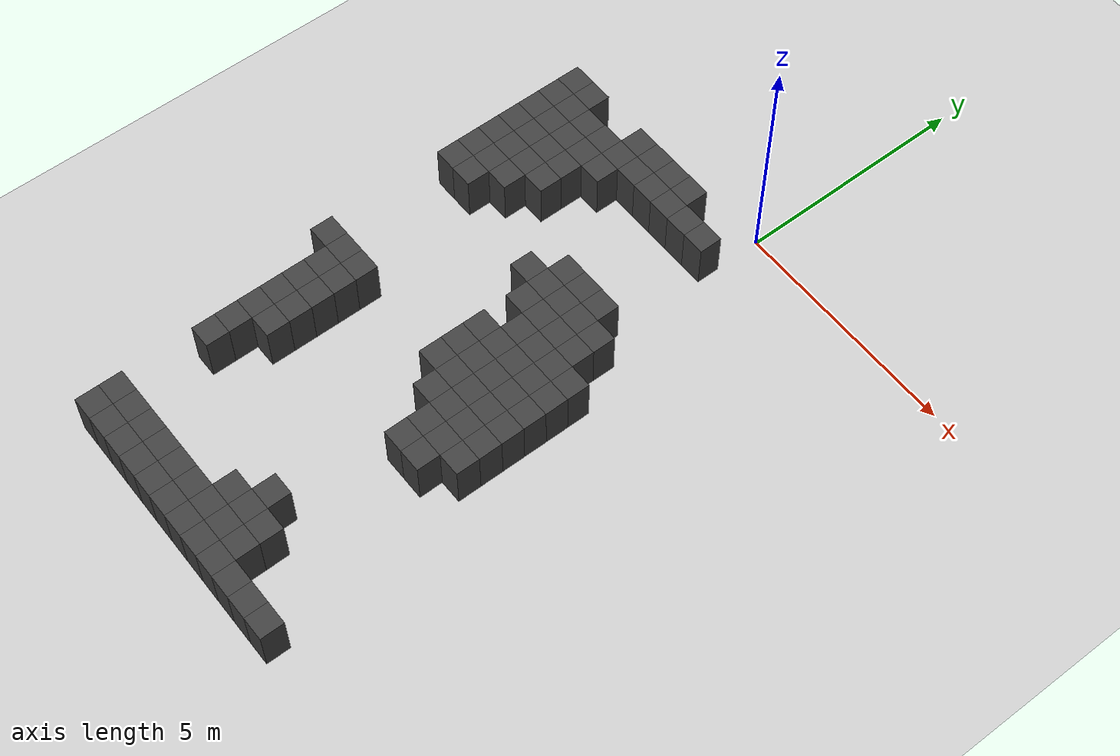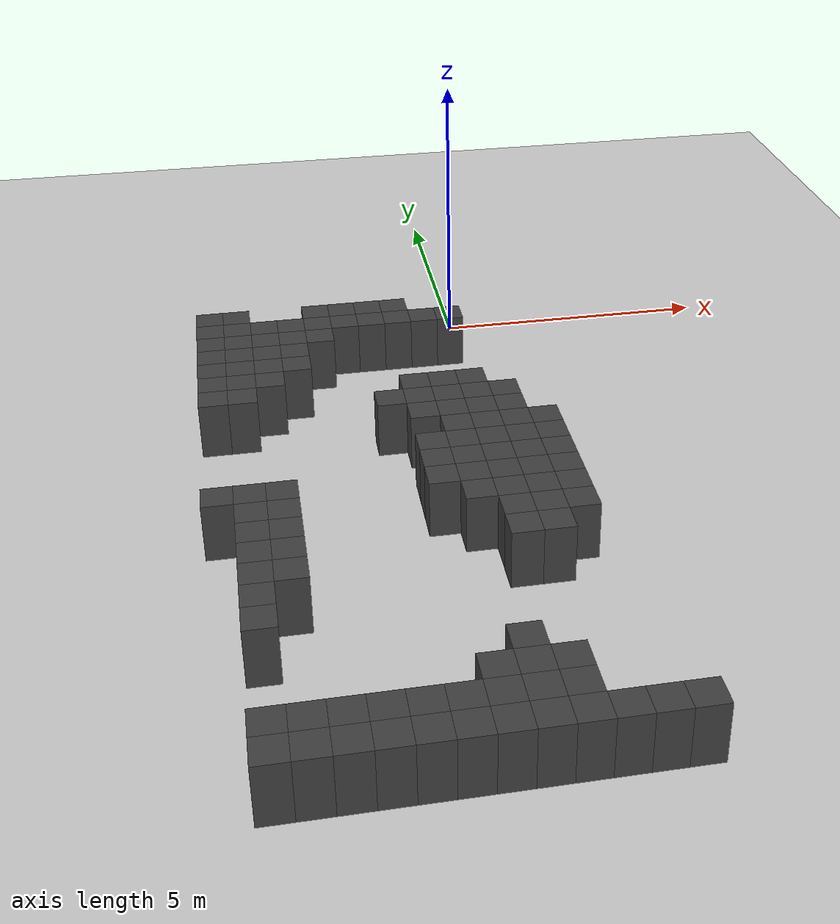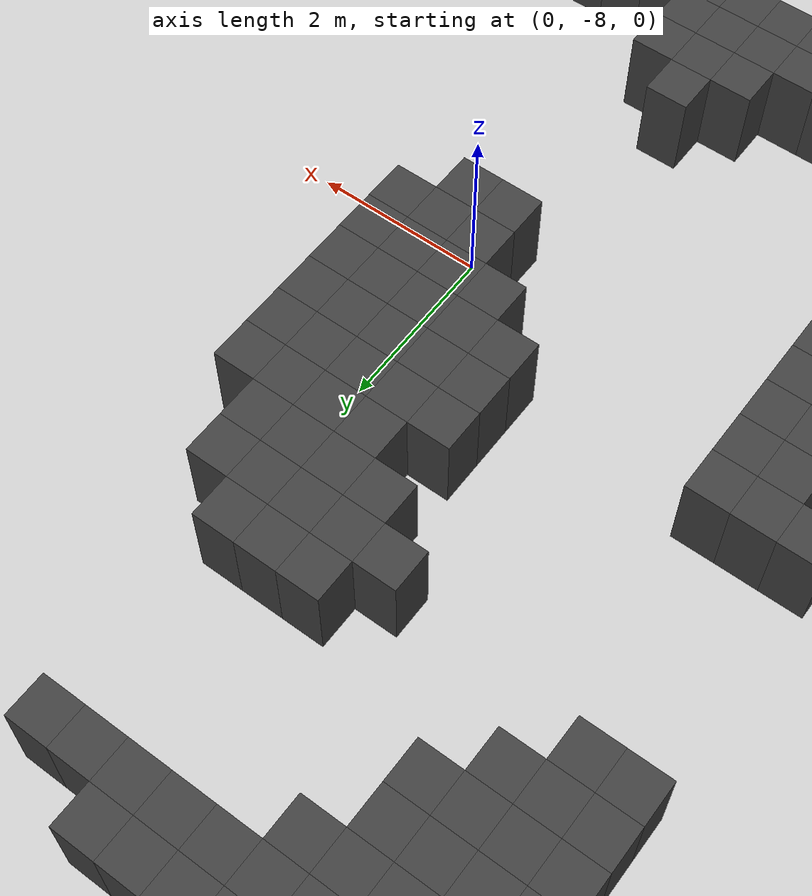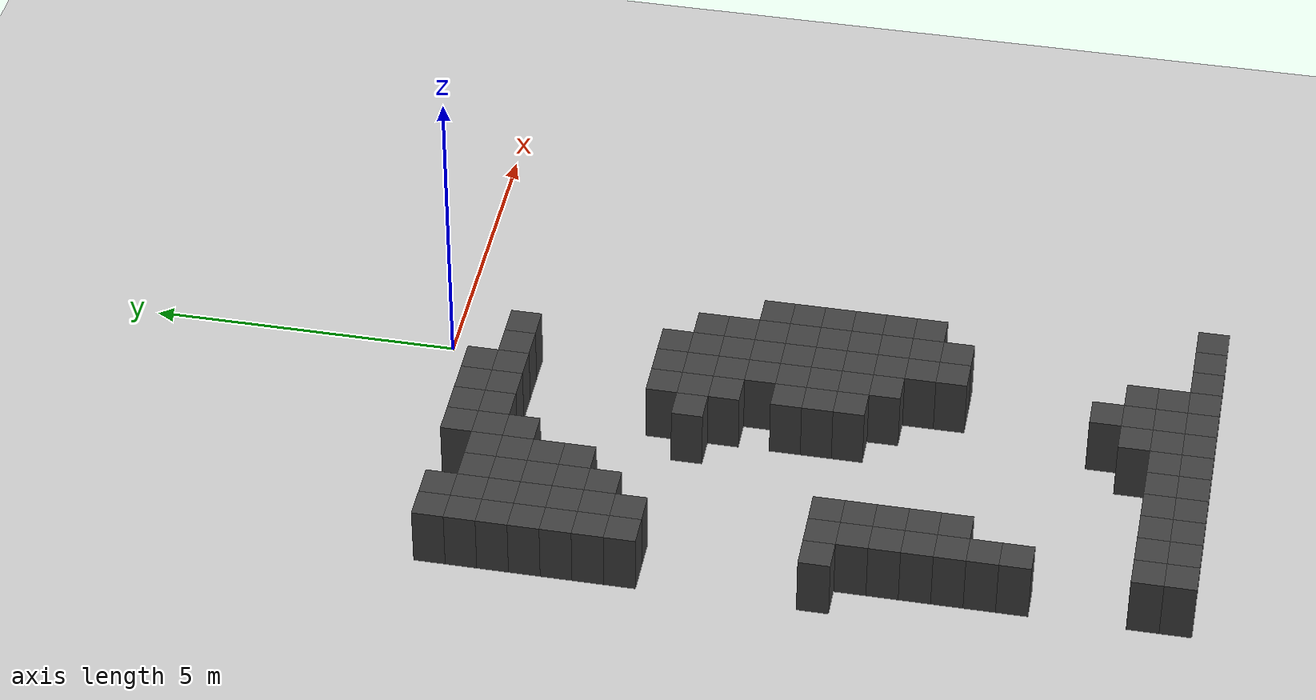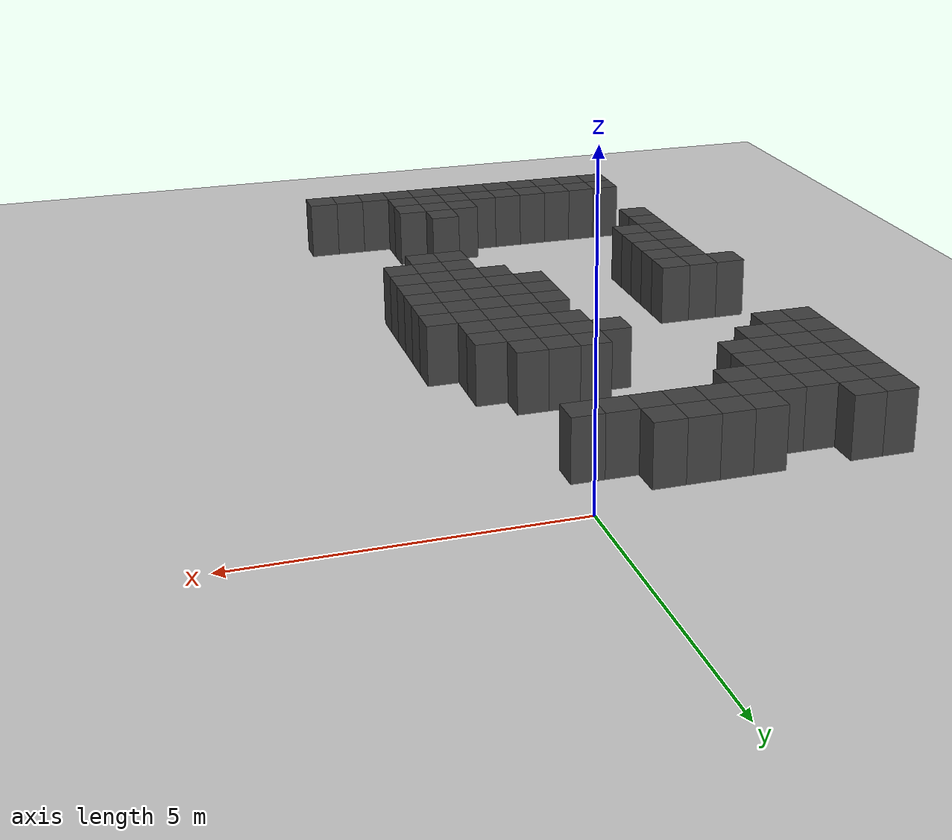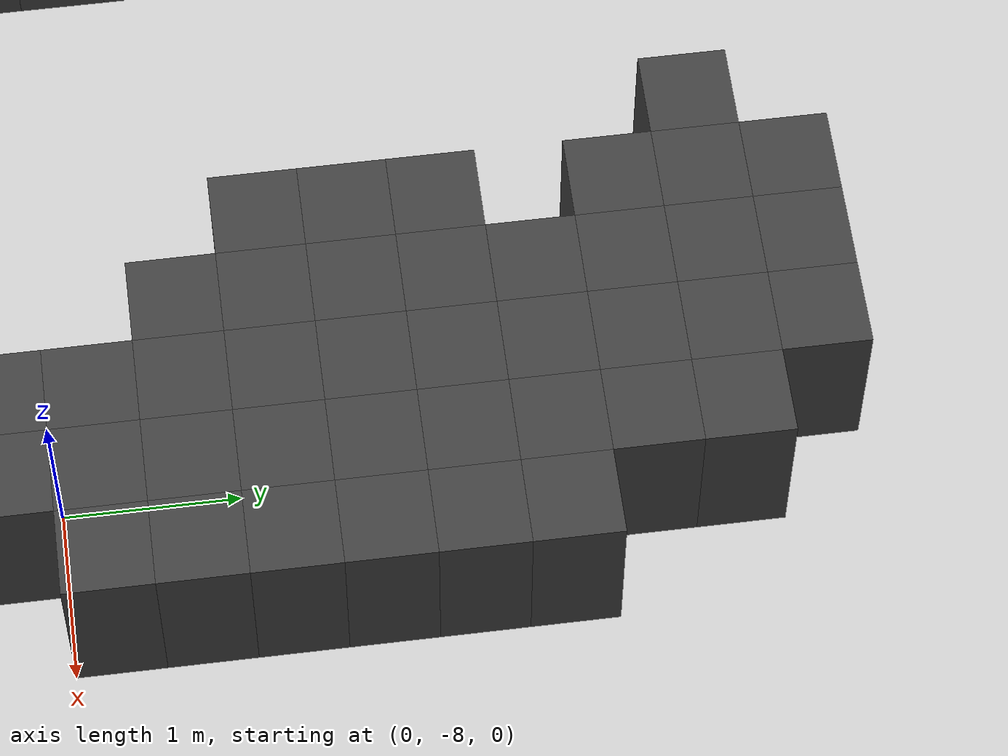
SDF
<sdf version="1.7">
 <world name="map_9405">
  <model name="ground_plane">
   <static>true</static>
   <link name="link">
    <collision name="collision">
     <geometry><plane><normal>0 0 1</normal><size>200 200</size></plane></geometry>
    </collision>
    <visual name="visual">
     <geometry><plane><normal>0 0 1</normal><size>200 200</size></plane></geometry>
     <material><ambient>0.8 0.8 0.8 1</ambient><diffuse>0.8 0.8 0.8 1</diffuse></material>
    </visual>
   </link>
  </model>
  <model name="maze_environment">
   <static>true</static>
   <link name="wall_453">
    <pose>-4.750 -0.750 0.500 0 0 0</pose>
    <collision name="col"><geometry><box><size>0.5 0.5 1.0</size></box></geometry></collision>
    <visual name="vis">
     <geometry><box><size>0.5 0.5 1.0</size></box></geometry>
     <material><ambient>0.15 0.15 0.15 1</ambient><diffuse>0.25 0.25 0.25 1</diffuse></material>
    </visual>
   </link>
   <link name="wall_454">
    <pose>-4.250 -0.750 0.500 0 0 0</pose>
    <collision name="col"><geometry><box><size>0.5 0.5 1.0</size></box></geometry></collision>
    <visual name="vis">
     <geometry><box><size>0.5 0.5 1.0</size></box></geometry>
     <material><ambient>0.15 0.15 0.15 1</ambient><diffuse>0.25 0.25 0.25 1</diffuse></material>
    </visual>
   </link>
   <link name="wall_455">
    <pose>-2.750 -0.750 0.500 0 0 0</pose>
    <collision name="col"><geometry><box><size>0.5 0.5 1.0</size></box></geometry></collision>
    <visual name="vis">
     <geometry><box><size>0.5 0.5 1.0</size></box></geometry>
     <material><ambient>0.15 0.15 0.15 1</ambient><diffuse>0.25 0.25 0.25 1</diffuse></material>
    </visual>
   </link>
   <link name="wall_456">
    <pose>-2.250 -0.750 0.500 0 0 0</pose>
    <collision name="col"><geometry><box><size>0.5 0.5 1.0</size></box></geometry></collision>
    <visual name="vis">
     <geometry><box><size>0.5 0.5 1.0</size></box></geometry>
     <material><ambient>0.15 0.15 0.15 1</ambient><diffuse>0.25 0.25 0.25 1</diffuse></material>
    </visual>
   </link>
   <link name="wall_457">
    <pose>-1.750 -0.750 0.500 0 0 0</pose>
    <collision name="col"><geometry><box><size>0.5 0.5 1.0</size></box></geometry></collision>
    <visual name="vis">
     <geometry><box><size>0.5 0.5 1.0</size></box></geometry>
     <material><ambient>0.15 0.15 0.15 1</ambient><diffuse>0.25 0.25 0.25 1</diffuse></material>
    </visual>
   </link>
   <link name="wall_458">
    <pose>-1.250 -0.750 0.500 0 0 0</pose>
    <collision name="col"><geometry><box><size>0.5 0.5 1.0</size></box></geometry></collision>
    <visual name="vis">
     <geometry><box><size>0.5 0.5 1.0</size></box></geometry>
     <material><ambient>0.15 0.15 0.15 1</ambient><diffuse>0.25 0.25 0.25 1</diffuse></material>
    </visual>
   </link>
   <link name="wall_479">
    <pose>-4.750 -1.250 0.500 0 0 0</pose>
    <collision name="col"><geometry><box><size>0.5 0.5 1.0</size></box></geometry></collision>
    <visual name="vis">
     <geometry><box><size>0.5 0.5 1.0</size></box></geometry>
     <material><ambient>0.15 0.15 0.15 1</ambient><diffuse>0.25 0.25 0.25 1</diffuse></material>
    </visual>
   </link>
   <link name="wall_480">
    <pose>-4.250 -1.250 0.500 0 0 0</pose>
    <collision name="col"><geometry><box><size>0.5 0.5 1.0</size></box></geometry></collision>
    <visual name="vis">
     <geometry><box><size>0.5 0.5 1.0</size></box></geometry>
     <material><ambient>0.15 0.15 0.15 1</ambient><diffuse>0.25 0.25 0.25 1</diffuse></material>
    </visual>
   </link>
   <link name="wall_481">
    <pose>-3.750 -1.250 0.500 0 0 0</pose>
    <collision name="col"><geometry><box><size>0.5 0.5 1.0</size></box></geometry></collision>
    <visual name="vis">
     <geometry><box><size>0.5 0.5 1.0</size></box></geometry>
     <material><ambient>0.15 0.15 0.15 1</ambient><diffuse>0.25 0.25 0.25 1</diffuse></material>
    </visual>
   </link>
   <link name="wall_482">
    <pose>-3.250 -1.250 0.500 0 0 0</pose>
    <collision name="col"><geometry><box><size>0.5 0.5 1.0</size></box></geometry></collision>
    <visual name="vis">
     <geometry><box><size>0.5 0.5 1.0</size></box></geometry>
     <material><ambient>0.15 0.15 0.15 1</ambient><diffuse>0.25 0.25 0.25 1</diffuse></material>
    </visual>
   </link>
   <link name="wall_483">
    <pose>-2.750 -1.250 0.500 0 0 0</pose>
    <collision name="col"><geometry><box><size>0.5 0.5 1.0</size></box></geometry></collision>
    <visual name="vis">
     <geometry><box><size>0.5 0.5 1.0</size></box></geometry>
     <material><ambient>0.15 0.15 0.15 1</ambient><diffuse>0.25 0.25 0.25 1</diffuse></material>
    </visual>
   </link>
   <link name="wall_484">
    <pose>-2.250 -1.250 0.500 0 0 0</pose>
    <collision name="col"><geometry><box><size>0.5 0.5 1.0</size></box></geometry></collision>
    <visual name="vis">
     <geometry><box><size>0.5 0.5 1.0</size></box></geometry>
     <material><ambient>0.15 0.15 0.15 1</ambient><diffuse>0.25 0.25 0.25 1</diffuse></material>
    </visual>
   </link>
   <link name="wall_485">
    <pose>-1.750 -1.250 0.500 0 0 0</pose>
    <collision name="col"><geometry><box><size>0.5 0.5 1.0</size></box></geometry></collision>
    <visual name="vis">
     <geometry><box><size>0.5 0.5 1.0</size></box></geometry>
     <material><ambient>0.15 0.15 0.15 1</ambient><diffuse>0.25 0.25 0.25 1</diffuse></material>
    </visual>
   </link>
   <link name="wall_486">
    <pose>-1.250 -1.250 0.500 0 0 0</pose>
    <collision name="col"><geometry><box><size>0.5 0.5 1.0</size></box></geometry></collision>
    <visual name="vis">
     <geometry><box><size>0.5 0.5 1.0</size></box></geometry>
     <material><ambient>0.15 0.15 0.15 1</ambient><diffuse>0.25 0.25 0.25 1</diffuse></material>
    </visual>
   </link>
   <link name="wall_487">
    <pose>-0.750 -1.250 0.500 0 0 0</pose>
    <collision name="col"><geometry><box><size>0.5 0.5 1.0</size></box></geometry></collision>
    <visual name="vis">
     <geometry><box><size>0.5 0.5 1.0</size></box></geometry>
     <material><ambient>0.15 0.15 0.15 1</ambient><diffuse>0.25 0.25 0.25 1</diffuse></material>
    </visual>
   </link>
   <link name="wall_488">
    <pose>-0.250 -1.250 0.500 0 0 0</pose>
    <collision name="col"><geometry><box><size>0.5 0.5 1.0</size></box></geometry></collision>
    <visual name="vis">
     <geometry><box><size>0.5 0.5 1.0</size></box></geometry>
     <material><ambient>0.15 0.15 0.15 1</ambient><diffuse>0.25 0.25 0.25 1</diffuse></material>
    </visual>
   </link>
   <link name="wall_502">
    <pose>-4.750 -1.750 0.500 0 0 0</pose>
    <collision name="col"><geometry><box><size>0.5 0.5 1.0</size></box></geometry></collision>
    <visual name="vis">
     <geometry><box><size>0.5 0.5 1.0</size></box></geometry>
     <material><ambient>0.15 0.15 0.15 1</ambient><diffuse>0.25 0.25 0.25 1</diffuse></material>
    </visual>
   </link>
   <link name="wall_503">
    <pose>-4.250 -1.750 0.500 0 0 0</pose>
    <collision name="col"><geometry><box><size>0.5 0.5 1.0</size></box></geometry></collision>
    <visual name="vis">
     <geometry><box><size>0.5 0.5 1.0</size></box></geometry>
     <material><ambient>0.15 0.15 0.15 1</ambient><diffuse>0.25 0.25 0.25 1</diffuse></material>
    </visual>
   </link>
   <link name="wall_504">
    <pose>-3.750 -1.750 0.500 0 0 0</pose>
    <collision name="col"><geometry><box><size>0.5 0.5 1.0</size></box></geometry></collision>
    <visual name="vis">
     <geometry><box><size>0.5 0.5 1.0</size></box></geometry>
     <material><ambient>0.15 0.15 0.15 1</ambient><diffuse>0.25 0.25 0.25 1</diffuse></material>
    </visual>
   </link>
   <link name="wall_505">
    <pose>-3.250 -1.750 0.500 0 0 0</pose>
    <collision name="col"><geometry><box><size>0.5 0.5 1.0</size></box></geometry></collision>
    <visual name="vis">
     <geometry><box><size>0.5 0.5 1.0</size></box></geometry>
     <material><ambient>0.15 0.15 0.15 1</ambient><diffuse>0.25 0.25 0.25 1</diffuse></material>
    </visual>
   </link>
   <link name="wall_506">
    <pose>-2.750 -1.750 0.500 0 0 0</pose>
    <collision name="col"><geometry><box><size>0.5 0.5 1.0</size></box></geometry></collision>
    <visual name="vis">
     <geometry><box><size>0.5 0.5 1.0</size></box></geometry>
     <material><ambient>0.15 0.15 0.15 1</ambient><diffuse>0.25 0.25 0.25 1</diffuse></material>
    </visual>
   </link>
   <link name="wall_519">
    <pose>-4.750 -2.250 0.500 0 0 0</pose>
    <collision name="col"><geometry><box><size>0.5 0.5 1.0</size></box></geometry></collision>
    <visual name="vis">
     <geometry><box><size>0.5 0.5 1.0</size></box></geometry>
     <material><ambient>0.15 0.15 0.15 1</ambient><diffuse>0.25 0.25 0.25 1</diffuse></material>
    </visual>
   </link>
   <link name="wall_520">
    <pose>-4.250 -2.250 0.500 0 0 0</pose>
    <collision name="col"><geometry><box><size>0.5 0.5 1.0</size></box></geometry></collision>
    <visual name="vis">
     <geometry><box><size>0.5 0.5 1.0</size></box></geometry>
     <material><ambient>0.15 0.15 0.15 1</ambient><diffuse>0.25 0.25 0.25 1</diffuse></material>
    </visual>
   </link>
   <link name="wall_521">
    <pose>-3.750 -2.250 0.500 0 0 0</pose>
    <collision name="col"><geometry><box><size>0.5 0.5 1.0</size></box></geometry></collision>
    <visual name="vis">
     <geometry><box><size>0.5 0.5 1.0</size></box></geometry>
     <material><ambient>0.15 0.15 0.15 1</ambient><diffuse>0.25 0.25 0.25 1</diffuse></material>
    </visual>
   </link>
   <link name="wall_522">
    <pose>-3.250 -2.250 0.500 0 0 0</pose>
    <collision name="col"><geometry><box><size>0.5 0.5 1.0</size></box></geometry></collision>
    <visual name="vis">
     <geometry><box><size>0.5 0.5 1.0</size></box></geometry>
     <material><ambient>0.15 0.15 0.15 1</ambient><diffuse>0.25 0.25 0.25 1</diffuse></material>
    </visual>
   </link>
   <link name="wall_531">
    <pose>-4.750 -2.750 0.500 0 0 0</pose>
    <collision name="col"><geometry><box><size>0.5 0.5 1.0</size></box></geometry></collision>
    <visual name="vis">
     <geometry><box><size>0.5 0.5 1.0</size></box></geometry>
     <material><ambient>0.15 0.15 0.15 1</ambient><diffuse>0.25 0.25 0.25 1</diffuse></material>
    </visual>
   </link>
   <link name="wall_532">
    <pose>-4.250 -2.750 0.500 0 0 0</pose>
    <collision name="col"><geometry><box><size>0.5 0.5 1.0</size></box></geometry></collision>
    <visual name="vis">
     <geometry><box><size>0.5 0.5 1.0</size></box></geometry>
     <material><ambient>0.15 0.15 0.15 1</ambient><diffuse>0.25 0.25 0.25 1</diffuse></material>
    </visual>
   </link>
   <link name="wall_533">
    <pose>-3.750 -2.750 0.500 0 0 0</pose>
    <collision name="col"><geometry><box><size>0.5 0.5 1.0</size></box></geometry></collision>
    <visual name="vis">
     <geometry><box><size>0.5 0.5 1.0</size></box></geometry>
     <material><ambient>0.15 0.15 0.15 1</ambient><diffuse>0.25 0.25 0.25 1</diffuse></material>
    </visual>
   </link>
   <link name="wall_534">
    <pose>-3.250 -2.750 0.500 0 0 0</pose>
    <collision name="col"><geometry><box><size>0.5 0.5 1.0</size></box></geometry></collision>
    <visual name="vis">
     <geometry><box><size>0.5 0.5 1.0</size></box></geometry>
     <material><ambient>0.15 0.15 0.15 1</ambient><diffuse>0.25 0.25 0.25 1</diffuse></material>
    </visual>
   </link>
   <link name="wall_549">
    <pose>-4.750 -3.250 0.500 0 0 0</pose>
    <collision name="col"><geometry><box><size>0.5 0.5 1.0</size></box></geometry></collision>
    <visual name="vis">
     <geometry><box><size>0.5 0.5 1.0</size></box></geometry>
     <material><ambient>0.15 0.15 0.15 1</ambient><diffuse>0.25 0.25 0.25 1</diffuse></material>
    </visual>
   </link>
   <link name="wall_550">
    <pose>-4.250 -3.250 0.500 0 0 0</pose>
    <collision name="col"><geometry><box><size>0.5 0.5 1.0</size></box></geometry></collision>
    <visual name="vis">
     <geometry><box><size>0.5 0.5 1.0</size></box></geometry>
     <material><ambient>0.15 0.15 0.15 1</ambient><diffuse>0.25 0.25 0.25 1</diffuse></material>
    </visual>
   </link>
   <link name="wall_551">
    <pose>-3.750 -3.250 0.500 0 0 0</pose>
    <collision name="col"><geometry><box><size>0.5 0.5 1.0</size></box></geometry></collision>
    <visual name="vis">
     <geometry><box><size>0.5 0.5 1.0</size></box></geometry>
     <material><ambient>0.15 0.15 0.15 1</ambient><diffuse>0.25 0.25 0.25 1</diffuse></material>
    </visual>
   </link>
   <link name="wall_565">
    <pose>-4.750 -3.750 0.500 0 0 0</pose>
    <collision name="col"><geometry><box><size>0.5 0.5 1.0</size></box></geometry></collision>
    <visual name="vis">
     <geometry><box><size>0.5 0.5 1.0</size></box></geometry>
     <material><ambient>0.15 0.15 0.15 1</ambient><diffuse>0.25 0.25 0.25 1</diffuse></material>
    </visual>
   </link>
   <link name="wall_566">
    <pose>-4.250 -3.750 0.500 0 0 0</pose>
    <collision name="col"><geometry><box><size>0.5 0.5 1.0</size></box></geometry></collision>
    <visual name="vis">
     <geometry><box><size>0.5 0.5 1.0</size></box></geometry>
     <material><ambient>0.15 0.15 0.15 1</ambient><diffuse>0.25 0.25 0.25 1</diffuse></material>
    </visual>
   </link>
   <link name="wall_567">
    <pose>-1.250 -3.750 0.500 0 0 0</pose>
    <collision name="col"><geometry><box><size>0.5 0.5 1.0</size></box></geometry></collision>
    <visual name="vis">
     <geometry><box><size>0.5 0.5 1.0</size></box></geometry>
     <material><ambient>0.15 0.15 0.15 1</ambient><diffuse>0.25 0.25 0.25 1</diffuse></material>
    </visual>
   </link>
   <link name="wall_568">
    <pose>-0.750 -3.750 0.500 0 0 0</pose>
    <collision name="col"><geometry><box><size>0.5 0.5 1.0</size></box></geometry></collision>
    <visual name="vis">
     <geometry><box><size>0.5 0.5 1.0</size></box></geometry>
     <material><ambient>0.15 0.15 0.15 1</ambient><diffuse>0.25 0.25 0.25 1</diffuse></material>
    </visual>
   </link>
   <link name="wall_569">
    <pose>-0.250 -3.750 0.500 0 0 0</pose>
    <collision name="col"><geometry><box><size>0.5 0.5 1.0</size></box></geometry></collision>
    <visual name="vis">
     <geometry><box><size>0.5 0.5 1.0</size></box></geometry>
     <material><ambient>0.15 0.15 0.15 1</ambient><diffuse>0.25 0.25 0.25 1</diffuse></material>
    </visual>
   </link>
   <link name="wall_580">
    <pose>-1.750 -4.250 0.500 0 0 0</pose>
    <collision name="col"><geometry><box><size>0.5 0.5 1.0</size></box></geometry></collision>
    <visual name="vis">
     <geometry><box><size>0.5 0.5 1.0</size></box></geometry>
     <material><ambient>0.15 0.15 0.15 1</ambient><diffuse>0.25 0.25 0.25 1</diffuse></material>
    </visual>
   </link>
   <link name="wall_581">
    <pose>-1.250 -4.250 0.500 0 0 0</pose>
    <collision name="col"><geometry><box><size>0.5 0.5 1.0</size></box></geometry></collision>
    <visual name="vis">
     <geometry><box><size>0.5 0.5 1.0</size></box></geometry>
     <material><ambient>0.15 0.15 0.15 1</ambient><diffuse>0.25 0.25 0.25 1</diffuse></material>
    </visual>
   </link>
   <link name="wall_582">
    <pose>-0.750 -4.250 0.500 0 0 0</pose>
    <collision name="col"><geometry><box><size>0.5 0.5 1.0</size></box></geometry></collision>
    <visual name="vis">
     <geometry><box><size>0.5 0.5 1.0</size></box></geometry>
     <material><ambient>0.15 0.15 0.15 1</ambient><diffuse>0.25 0.25 0.25 1</diffuse></material>
    </visual>
   </link>
   <link name="wall_583">
    <pose>-0.250 -4.250 0.500 0 0 0</pose>
    <collision name="col"><geometry><box><size>0.5 0.5 1.0</size></box></geometry></collision>
    <visual name="vis">
     <geometry><box><size>0.5 0.5 1.0</size></box></geometry>
     <material><ambient>0.15 0.15 0.15 1</ambient><diffuse>0.25 0.25 0.25 1</diffuse></material>
    </visual>
   </link>
   <link name="wall_584">
    <pose>0.250 -4.250 0.500 0 0 0</pose>
    <collision name="col"><geometry><box><size>0.5 0.5 1.0</size></box></geometry></collision>
    <visual name="vis">
     <geometry><box><size>0.5 0.5 1.0</size></box></geometry>
     <material><ambient>0.15 0.15 0.15 1</ambient><diffuse>0.25 0.25 0.25 1</diffuse></material>
    </visual>
   </link>
   <link name="wall_593">
    <pose>-1.250 -4.750 0.500 0 0 0</pose>
    <collision name="col"><geometry><box><size>0.5 0.5 1.0</size></box></geometry></collision>
    <visual name="vis">
     <geometry><box><size>0.5 0.5 1.0</size></box></geometry>
     <material><ambient>0.15 0.15 0.15 1</ambient><diffuse>0.25 0.25 0.25 1</diffuse></material>
    </visual>
   </link>
   <link name="wall_594">
    <pose>-0.750 -4.750 0.500 0 0 0</pose>
    <collision name="col"><geometry><box><size>0.5 0.5 1.0</size></box></geometry></collision>
    <visual name="vis">
     <geometry><box><size>0.5 0.5 1.0</size></box></geometry>
     <material><ambient>0.15 0.15 0.15 1</ambient><diffuse>0.25 0.25 0.25 1</diffuse></material>
    </visual>
   </link>
   <link name="wall_595">
    <pose>-0.250 -4.750 0.500 0 0 0</pose>
    <collision name="col"><geometry><box><size>0.5 0.5 1.0</size></box></geometry></collision>
    <visual name="vis">
     <geometry><box><size>0.5 0.5 1.0</size></box></geometry>
     <material><ambient>0.15 0.15 0.15 1</ambient><diffuse>0.25 0.25 0.25 1</diffuse></material>
    </visual>
   </link>
   <link name="wall_596">
    <pose>0.250 -4.750 0.500 0 0 0</pose>
    <collision name="col"><geometry><box><size>0.5 0.5 1.0</size></box></geometry></collision>
    <visual name="vis">
     <geometry><box><size>0.5 0.5 1.0</size></box></geometry>
     <material><ambient>0.15 0.15 0.15 1</ambient><diffuse>0.25 0.25 0.25 1</diffuse></material>
    </visual>
   </link>
   <link name="wall_604">
    <pose>-0.750 -5.250 0.500 0 0 0</pose>
    <collision name="col"><geometry><box><size>0.5 0.5 1.0</size></box></geometry></collision>
    <visual name="vis">
     <geometry><box><size>0.5 0.5 1.0</size></box></geometry>
     <material><ambient>0.15 0.15 0.15 1</ambient><diffuse>0.25 0.25 0.25 1</diffuse></material>
    </visual>
   </link>
   <link name="wall_605">
    <pose>-0.250 -5.250 0.500 0 0 0</pose>
    <collision name="col"><geometry><box><size>0.5 0.5 1.0</size></box></geometry></collision>
    <visual name="vis">
     <geometry><box><size>0.5 0.5 1.0</size></box></geometry>
     <material><ambient>0.15 0.15 0.15 1</ambient><diffuse>0.25 0.25 0.25 1</diffuse></material>
    </visual>
   </link>
   <link name="wall_606">
    <pose>0.250 -5.250 0.500 0 0 0</pose>
    <collision name="col"><geometry><box><size>0.5 0.5 1.0</size></box></geometry></collision>
    <visual name="vis">
     <geometry><box><size>0.5 0.5 1.0</size></box></geometry>
     <material><ambient>0.15 0.15 0.15 1</ambient><diffuse>0.25 0.25 0.25 1</diffuse></material>
    </visual>
   </link>
   <link name="wall_607">
    <pose>0.750 -5.250 0.500 0 0 0</pose>
    <collision name="col"><geometry><box><size>0.5 0.5 1.0</size></box></geometry></collision>
    <visual name="vis">
     <geometry><box><size>0.5 0.5 1.0</size></box></geometry>
     <material><ambient>0.15 0.15 0.15 1</ambient><diffuse>0.25 0.25 0.25 1</diffuse></material>
    </visual>
   </link>
   <link name="wall_614">
    <pose>-1.250 -5.750 0.500 0 0 0</pose>
    <collision name="col"><geometry><box><size>0.5 0.5 1.0</size></box></geometry></collision>
    <visual name="vis">
     <geometry><box><size>0.5 0.5 1.0</size></box></geometry>
     <material><ambient>0.15 0.15 0.15 1</ambient><diffuse>0.25 0.25 0.25 1</diffuse></material>
    </visual>
   </link>
   <link name="wall_615">
    <pose>-0.750 -5.750 0.500 0 0 0</pose>
    <collision name="col"><geometry><box><size>0.5 0.5 1.0</size></box></geometry></collision>
    <visual name="vis">
     <geometry><box><size>0.5 0.5 1.0</size></box></geometry>
     <material><ambient>0.15 0.15 0.15 1</ambient><diffuse>0.25 0.25 0.25 1</diffuse></material>
    </visual>
   </link>
   <link name="wall_616">
    <pose>-0.250 -5.750 0.500 0 0 0</pose>
    <collision name="col"><geometry><box><size>0.5 0.5 1.0</size></box></geometry></collision>
    <visual name="vis">
     <geometry><box><size>0.5 0.5 1.0</size></box></geometry>
     <material><ambient>0.15 0.15 0.15 1</ambient><diffuse>0.25 0.25 0.25 1</diffuse></material>
    </visual>
   </link>
   <link name="wall_617">
    <pose>0.250 -5.750 0.500 0 0 0</pose>
    <collision name="col"><geometry><box><size>0.5 0.5 1.0</size></box></geometry></collision>
    <visual name="vis">
     <geometry><box><size>0.5 0.5 1.0</size></box></geometry>
     <material><ambient>0.15 0.15 0.15 1</ambient><diffuse>0.25 0.25 0.25 1</diffuse></material>
    </visual>
   </link>
   <link name="wall_618">
    <pose>0.750 -5.750 0.500 0 0 0</pose>
    <collision name="col"><geometry><box><size>0.5 0.5 1.0</size></box></geometry></collision>
    <visual name="vis">
     <geometry><box><size>0.5 0.5 1.0</size></box></geometry>
     <material><ambient>0.15 0.15 0.15 1</ambient><diffuse>0.25 0.25 0.25 1</diffuse></material>
    </visual>
   </link>
   <link name="wall_625">
    <pose>-1.250 -6.250 0.500 0 0 0</pose>
    <collision name="col"><geometry><box><size>0.5 0.5 1.0</size></box></geometry></collision>
    <visual name="vis">
     <geometry><box><size>0.5 0.5 1.0</size></box></geometry>
     <material><ambient>0.15 0.15 0.15 1</ambient><diffuse>0.25 0.25 0.25 1</diffuse></material>
    </visual>
   </link>
   <link name="wall_626">
    <pose>-0.750 -6.250 0.500 0 0 0</pose>
    <collision name="col"><geometry><box><size>0.5 0.5 1.0</size></box></geometry></collision>
    <visual name="vis">
     <geometry><box><size>0.5 0.5 1.0</size></box></geometry>
     <material><ambient>0.15 0.15 0.15 1</ambient><diffuse>0.25 0.25 0.25 1</diffuse></material>
    </visual>
   </link>
   <link name="wall_627">
    <pose>-0.250 -6.250 0.500 0 0 0</pose>
    <collision name="col"><geometry><box><size>0.5 0.5 1.0</size></box></geometry></collision>
    <visual name="vis">
     <geometry><box><size>0.5 0.5 1.0</size></box></geometry>
     <material><ambient>0.15 0.15 0.15 1</ambient><diffuse>0.25 0.25 0.25 1</diffuse></material>
    </visual>
   </link>
   <link name="wall_628">
    <pose>0.250 -6.250 0.500 0 0 0</pose>
    <collision name="col"><geometry><box><size>0.5 0.5 1.0</size></box></geometry></collision>
    <visual name="vis">
     <geometry><box><size>0.5 0.5 1.0</size></box></geometry>
     <material><ambient>0.15 0.15 0.15 1</ambient><diffuse>0.25 0.25 0.25 1</diffuse></material>
    </visual>
   </link>
   <link name="wall_629">
    <pose>0.750 -6.250 0.500 0 0 0</pose>
    <collision name="col"><geometry><box><size>0.5 0.5 1.0</size></box></geometry></collision>
    <visual name="vis">
     <geometry><box><size>0.5 0.5 1.0</size></box></geometry>
     <material><ambient>0.15 0.15 0.15 1</ambient><diffuse>0.25 0.25 0.25 1</diffuse></material>
    </visual>
   </link>
   <link name="wall_640">
    <pose>-4.750 -6.750 0.500 0 0 0</pose>
    <collision name="col"><geometry><box><size>0.5 0.5 1.0</size></box></geometry></collision>
    <visual name="vis">
     <geometry><box><size>0.5 0.5 1.0</size></box></geometry>
     <material><ambient>0.15 0.15 0.15 1</ambient><diffuse>0.25 0.25 0.25 1</diffuse></material>
    </visual>
   </link>
   <link name="wall_641">
    <pose>-4.250 -6.750 0.500 0 0 0</pose>
    <collision name="col"><geometry><box><size>0.5 0.5 1.0</size></box></geometry></collision>
    <visual name="vis">
     <geometry><box><size>0.5 0.5 1.0</size></box></geometry>
     <material><ambient>0.15 0.15 0.15 1</ambient><diffuse>0.25 0.25 0.25 1</diffuse></material>
    </visual>
   </link>
   <link name="wall_642">
    <pose>-3.750 -6.750 0.500 0 0 0</pose>
    <collision name="col"><geometry><box><size>0.5 0.5 1.0</size></box></geometry></collision>
    <visual name="vis">
     <geometry><box><size>0.5 0.5 1.0</size></box></geometry>
     <material><ambient>0.15 0.15 0.15 1</ambient><diffuse>0.25 0.25 0.25 1</diffuse></material>
    </visual>
   </link>
   <link name="wall_643">
    <pose>-1.250 -6.750 0.500 0 0 0</pose>
    <collision name="col"><geometry><box><size>0.5 0.5 1.0</size></box></geometry></collision>
    <visual name="vis">
     <geometry><box><size>0.5 0.5 1.0</size></box></geometry>
     <material><ambient>0.15 0.15 0.15 1</ambient><diffuse>0.25 0.25 0.25 1</diffuse></material>
    </visual>
   </link>
   <link name="wall_644">
    <pose>-0.750 -6.750 0.500 0 0 0</pose>
    <collision name="col"><geometry><box><size>0.5 0.5 1.0</size></box></geometry></collision>
    <visual name="vis">
     <geometry><box><size>0.5 0.5 1.0</size></box></geometry>
     <material><ambient>0.15 0.15 0.15 1</ambient><diffuse>0.25 0.25 0.25 1</diffuse></material>
    </visual>
   </link>
   <link name="wall_645">
    <pose>-0.250 -6.750 0.500 0 0 0</pose>
    <collision name="col"><geometry><box><size>0.5 0.5 1.0</size></box></geometry></collision>
    <visual name="vis">
     <geometry><box><size>0.5 0.5 1.0</size></box></geometry>
     <material><ambient>0.15 0.15 0.15 1</ambient><diffuse>0.25 0.25 0.25 1</diffuse></material>
    </visual>
   </link>
   <link name="wall_646">
    <pose>0.250 -6.750 0.500 0 0 0</pose>
    <collision name="col"><geometry><box><size>0.5 0.5 1.0</size></box></geometry></collision>
    <visual name="vis">
     <geometry><box><size>0.5 0.5 1.0</size></box></geometry>
     <material><ambient>0.15 0.15 0.15 1</ambient><diffuse>0.25 0.25 0.25 1</diffuse></material>
    </visual>
   </link>
   <link name="wall_647">
    <pose>0.750 -6.750 0.500 0 0 0</pose>
    <collision name="col"><geometry><box><size>0.5 0.5 1.0</size></box></geometry></collision>
    <visual name="vis">
     <geometry><box><size>0.5 0.5 1.0</size></box></geometry>
     <material><ambient>0.15 0.15 0.15 1</ambient><diffuse>0.25 0.25 0.25 1</diffuse></material>
    </visual>
   </link>
   <link name="wall_660">
    <pose>-4.250 -7.250 0.500 0 0 0</pose>
    <collision name="col"><geometry><box><size>0.5 0.5 1.0</size></box></geometry></collision>
    <visual name="vis">
     <geometry><box><size>0.5 0.5 1.0</size></box></geometry>
     <material><ambient>0.15 0.15 0.15 1</ambient><diffuse>0.25 0.25 0.25 1</diffuse></material>
    </visual>
   </link>
   <link name="wall_661">
    <pose>-3.750 -7.250 0.500 0 0 0</pose>
    <collision name="col"><geometry><box><size>0.5 0.5 1.0</size></box></geometry></collision>
    <visual name="vis">
     <geometry><box><size>0.5 0.5 1.0</size></box></geometry>
     <material><ambient>0.15 0.15 0.15 1</ambient><diffuse>0.25 0.25 0.25 1</diffuse></material>
    </visual>
   </link>
   <link name="wall_662">
    <pose>-0.750 -7.250 0.500 0 0 0</pose>
    <collision name="col"><geometry><box><size>0.5 0.5 1.0</size></box></geometry></collision>
    <visual name="vis">
     <geometry><box><size>0.5 0.5 1.0</size></box></geometry>
     <material><ambient>0.15 0.15 0.15 1</ambient><diffuse>0.25 0.25 0.25 1</diffuse></material>
    </visual>
   </link>
   <link name="wall_663">
    <pose>-0.250 -7.250 0.500 0 0 0</pose>
    <collision name="col"><geometry><box><size>0.5 0.5 1.0</size></box></geometry></collision>
    <visual name="vis">
     <geometry><box><size>0.5 0.5 1.0</size></box></geometry>
     <material><ambient>0.15 0.15 0.15 1</ambient><diffuse>0.25 0.25 0.25 1</diffuse></material>
    </visual>
   </link>
   <link name="wall_664">
    <pose>0.250 -7.250 0.500 0 0 0</pose>
    <collision name="col"><geometry><box><size>0.5 0.5 1.0</size></box></geometry></collision>
    <visual name="vis">
     <geometry><box><size>0.5 0.5 1.0</size></box></geometry>
     <material><ambient>0.15 0.15 0.15 1</ambient><diffuse>0.25 0.25 0.25 1</diffuse></material>
    </visual>
   </link>
   <link name="wall_665">
    <pose>0.750 -7.250 0.500 0 0 0</pose>
    <collision name="col"><geometry><box><size>0.5 0.5 1.0</size></box></geometry></collision>
    <visual name="vis">
     <geometry><box><size>0.5 0.5 1.0</size></box></geometry>
     <material><ambient>0.15 0.15 0.15 1</ambient><diffuse>0.25 0.25 0.25 1</diffuse></material>
    </visual>
   </link>
   <link name="wall_679">
    <pose>-4.250 -7.750 0.500 0 0 0</pose>
    <collision name="col"><geometry><box><size>0.5 0.5 1.0</size></box></geometry></collision>
    <visual name="vis">
     <geometry><box><size>0.5 0.5 1.0</size></box></geometry>
     <material><ambient>0.15 0.15 0.15 1</ambient><diffuse>0.25 0.25 0.25 1</diffuse></material>
    </visual>
   </link>
   <link name="wall_680">
    <pose>-3.750 -7.750 0.500 0 0 0</pose>
    <collision name="col"><geometry><box><size>0.5 0.5 1.0</size></box></geometry></collision>
    <visual name="vis">
     <geometry><box><size>0.5 0.5 1.0</size></box></geometry>
     <material><ambient>0.15 0.15 0.15 1</ambient><diffuse>0.25 0.25 0.25 1</diffuse></material>
    </visual>
   </link>
   <link name="wall_681">
    <pose>-0.250 -7.750 0.500 0 0 0</pose>
    <collision name="col"><geometry><box><size>0.5 0.5 1.0</size></box></geometry></collision>
    <visual name="vis">
     <geometry><box><size>0.5 0.5 1.0</size></box></geometry>
     <material><ambient>0.15 0.15 0.15 1</ambient><diffuse>0.25 0.25 0.25 1</diffuse></material>
    </visual>
   </link>
   <link name="wall_682">
    <pose>0.250 -7.750 0.500 0 0 0</pose>
    <collision name="col"><geometry><box><size>0.5 0.5 1.0</size></box></geometry></collision>
    <visual name="vis">
     <geometry><box><size>0.5 0.5 1.0</size></box></geometry>
     <material><ambient>0.15 0.15 0.15 1</ambient><diffuse>0.25 0.25 0.25 1</diffuse></material>
    </visual>
   </link>
   <link name="wall_683">
    <pose>0.750 -7.750 0.500 0 0 0</pose>
    <collision name="col"><geometry><box><size>0.5 0.5 1.0</size></box></geometry></collision>
    <visual name="vis">
     <geometry><box><size>0.5 0.5 1.0</size></box></geometry>
     <material><ambient>0.15 0.15 0.15 1</ambient><diffuse>0.25 0.25 0.25 1</diffuse></material>
    </visual>
   </link>
   <link name="wall_700">
    <pose>-4.250 -8.250 0.500 0 0 0</pose>
    <collision name="col"><geometry><box><size>0.5 0.5 1.0</size></box></geometry></collision>
    <visual name="vis">
     <geometry><box><size>0.5 0.5 1.0</size></box></geometry>
     <material><ambient>0.15 0.15 0.15 1</ambient><diffuse>0.25 0.25 0.25 1</diffuse></material>
    </visual>
   </link>
   <link name="wall_701">
    <pose>-3.750 -8.250 0.500 0 0 0</pose>
    <collision name="col"><geometry><box><size>0.5 0.5 1.0</size></box></geometry></collision>
    <visual name="vis">
     <geometry><box><size>0.5 0.5 1.0</size></box></geometry>
     <material><ambient>0.15 0.15 0.15 1</ambient><diffuse>0.25 0.25 0.25 1</diffuse></material>
    </visual>
   </link>
   <link name="wall_702">
    <pose>-0.250 -8.250 0.500 0 0 0</pose>
    <collision name="col"><geometry><box><size>0.5 0.5 1.0</size></box></geometry></collision>
    <visual name="vis">
     <geometry><box><size>0.5 0.5 1.0</size></box></geometry>
     <material><ambient>0.15 0.15 0.15 1</ambient><diffuse>0.25 0.25 0.25 1</diffuse></material>
    </visual>
   </link>
   <link name="wall_703">
    <pose>0.250 -8.250 0.500 0 0 0</pose>
    <collision name="col"><geometry><box><size>0.5 0.5 1.0</size></box></geometry></collision>
    <visual name="vis">
     <geometry><box><size>0.5 0.5 1.0</size></box></geometry>
     <material><ambient>0.15 0.15 0.15 1</ambient><diffuse>0.25 0.25 0.25 1</diffuse></material>
    </visual>
   </link>
   <link name="wall_717">
    <pose>-4.250 -8.750 0.500 0 0 0</pose>
    <collision name="col"><geometry><box><size>0.5 0.5 1.0</size></box></geometry></collision>
    <visual name="vis">
     <geometry><box><size>0.5 0.5 1.0</size></box></geometry>
     <material><ambient>0.15 0.15 0.15 1</ambient><diffuse>0.25 0.25 0.25 1</diffuse></material>
    </visual>
   </link>
   <link name="wall_718">
    <pose>-3.750 -8.750 0.500 0 0 0</pose>
    <collision name="col"><geometry><box><size>0.5 0.5 1.0</size></box></geometry></collision>
    <visual name="vis">
     <geometry><box><size>0.5 0.5 1.0</size></box></geometry>
     <material><ambient>0.15 0.15 0.15 1</ambient><diffuse>0.25 0.25 0.25 1</diffuse></material>
    </visual>
   </link>
   <link name="wall_731">
    <pose>-4.250 -9.250 0.500 0 0 0</pose>
    <collision name="col"><geometry><box><size>0.5 0.5 1.0</size></box></geometry></collision>
    <visual name="vis">
     <geometry><box><size>0.5 0.5 1.0</size></box></geometry>
     <material><ambient>0.15 0.15 0.15 1</ambient><diffuse>0.25 0.25 0.25 1</diffuse></material>
    </visual>
   </link>
   <link name="wall_743">
    <pose>-4.250 -9.750 0.500 0 0 0</pose>
    <collision name="col"><geometry><box><size>0.5 0.5 1.0</size></box></geometry></collision>
    <visual name="vis">
     <geometry><box><size>0.5 0.5 1.0</size></box></geometry>
     <material><ambient>0.15 0.15 0.15 1</ambient><diffuse>0.25 0.25 0.25 1</diffuse></material>
    </visual>
   </link>
   <link name="wall_771">
    <pose>-0.750 -10.750 0.500 0 0 0</pose>
    <collision name="col"><geometry><box><size>0.5 0.5 1.0</size></box></geometry></collision>
    <visual name="vis">
     <geometry><box><size>0.5 0.5 1.0</size></box></geometry>
     <material><ambient>0.15 0.15 0.15 1</ambient><diffuse>0.25 0.25 0.25 1</diffuse></material>
    </visual>
   </link>
   <link name="wall_791">
    <pose>-1.250 -11.250 0.500 0 0 0</pose>
    <collision name="col"><geometry><box><size>0.5 0.5 1.0</size></box></geometry></collision>
    <visual name="vis">
     <geometry><box><size>0.5 0.5 1.0</size></box></geometry>
     <material><ambient>0.15 0.15 0.15 1</ambient><diffuse>0.25 0.25 0.25 1</diffuse></material>
    </visual>
   </link>
   <link name="wall_792">
    <pose>-0.750 -11.250 0.500 0 0 0</pose>
    <collision name="col"><geometry><box><size>0.5 0.5 1.0</size></box></geometry></collision>
    <visual name="vis">
     <geometry><box><size>0.5 0.5 1.0</size></box></geometry>
     <material><ambient>0.15 0.15 0.15 1</ambient><diffuse>0.25 0.25 0.25 1</diffuse></material>
    </visual>
   </link>
   <link name="wall_793">
    <pose>-0.250 -11.250 0.500 0 0 0</pose>
    <collision name="col"><geometry><box><size>0.5 0.5 1.0</size></box></geometry></collision>
    <visual name="vis">
     <geometry><box><size>0.5 0.5 1.0</size></box></geometry>
     <material><ambient>0.15 0.15 0.15 1</ambient><diffuse>0.25 0.25 0.25 1</diffuse></material>
    </visual>
   </link>
   <link name="wall_818">
    <pose>-4.250 -11.750 0.500 0 0 0</pose>
    <collision name="col"><geometry><box><size>0.5 0.5 1.0</size></box></geometry></collision>
    <visual name="vis">
     <geometry><box><size>0.5 0.5 1.0</size></box></geometry>
     <material><ambient>0.15 0.15 0.15 1</ambient><diffuse>0.25 0.25 0.25 1</diffuse></material>
    </visual>
   </link>
   <link name="wall_819">
    <pose>-3.750 -11.750 0.500 0 0 0</pose>
    <collision name="col"><geometry><box><size>0.5 0.5 1.0</size></box></geometry></collision>
    <visual name="vis">
     <geometry><box><size>0.5 0.5 1.0</size></box></geometry>
     <material><ambient>0.15 0.15 0.15 1</ambient><diffuse>0.25 0.25 0.25 1</diffuse></material>
    </visual>
   </link>
   <link name="wall_820">
    <pose>-3.250 -11.750 0.500 0 0 0</pose>
    <collision name="col"><geometry><box><size>0.5 0.5 1.0</size></box></geometry></collision>
    <visual name="vis">
     <geometry><box><size>0.5 0.5 1.0</size></box></geometry>
     <material><ambient>0.15 0.15 0.15 1</ambient><diffuse>0.25 0.25 0.25 1</diffuse></material>
    </visual>
   </link>
   <link name="wall_821">
    <pose>-2.750 -11.750 0.500 0 0 0</pose>
    <collision name="col"><geometry><box><size>0.5 0.5 1.0</size></box></geometry></collision>
    <visual name="vis">
     <geometry><box><size>0.5 0.5 1.0</size></box></geometry>
     <material><ambient>0.15 0.15 0.15 1</ambient><diffuse>0.25 0.25 0.25 1</diffuse></material>
    </visual>
   </link>
   <link name="wall_822">
    <pose>-2.250 -11.750 0.500 0 0 0</pose>
    <collision name="col"><geometry><box><size>0.5 0.5 1.0</size></box></geometry></collision>
    <visual name="vis">
     <geometry><box><size>0.5 0.5 1.0</size></box></geometry>
     <material><ambient>0.15 0.15 0.15 1</ambient><diffuse>0.25 0.25 0.25 1</diffuse></material>
    </visual>
   </link>
   <link name="wall_823">
    <pose>-1.750 -11.750 0.500 0 0 0</pose>
    <collision name="col"><geometry><box><size>0.5 0.5 1.0</size></box></geometry></collision>
    <visual name="vis">
     <geometry><box><size>0.5 0.5 1.0</size></box></geometry>
     <material><ambient>0.15 0.15 0.15 1</ambient><diffuse>0.25 0.25 0.25 1</diffuse></material>
    </visual>
   </link>
   <link name="wall_824">
    <pose>-1.250 -11.750 0.500 0 0 0</pose>
    <collision name="col"><geometry><box><size>0.5 0.5 1.0</size></box></geometry></collision>
    <visual name="vis">
     <geometry><box><size>0.5 0.5 1.0</size></box></geometry>
     <material><ambient>0.15 0.15 0.15 1</ambient><diffuse>0.25 0.25 0.25 1</diffuse></material>
    </visual>
   </link>
   <link name="wall_825">
    <pose>-0.750 -11.750 0.500 0 0 0</pose>
    <collision name="col"><geometry><box><size>0.5 0.5 1.0</size></box></geometry></collision>
    <visual name="vis">
     <geometry><box><size>0.5 0.5 1.0</size></box></geometry>
     <material><ambient>0.15 0.15 0.15 1</ambient><diffuse>0.25 0.25 0.25 1</diffuse></material>
    </visual>
   </link>
   <link name="wall_826">
    <pose>-0.250 -11.750 0.500 0 0 0</pose>
    <collision name="col"><geometry><box><size>0.5 0.5 1.0</size></box></geometry></collision>
    <visual name="vis">
     <geometry><box><size>0.5 0.5 1.0</size></box></geometry>
     <material><ambient>0.15 0.15 0.15 1</ambient><diffuse>0.25 0.25 0.25 1</diffuse></material>
    </visual>
   </link>
   <link name="wall_863">
    <pose>-4.250 -12.250 0.500 0 0 0</pose>
    <collision name="col"><geometry><box><size>0.5 0.5 1.0</size></box></geometry></collision>
    <visual name="vis">
     <geometry><box><size>0.5 0.5 1.0</size></box></geometry>
     <material><ambient>0.15 0.15 0.15 1</ambient><diffuse>0.25 0.25 0.25 1</diffuse></material>
    </visual>
   </link>
   <link name="wall_864">
    <pose>-3.750 -12.250 0.500 0 0 0</pose>
    <collision name="col"><geometry><box><size>0.5 0.5 1.0</size></box></geometry></collision>
    <visual name="vis">
     <geometry><box><size>0.5 0.5 1.0</size></box></geometry>
     <material><ambient>0.15 0.15 0.15 1</ambient><diffuse>0.25 0.25 0.25 1</diffuse></material>
    </visual>
   </link>
   <link name="wall_865">
    <pose>-3.250 -12.250 0.500 0 0 0</pose>
    <collision name="col"><geometry><box><size>0.5 0.5 1.0</size></box></geometry></collision>
    <visual name="vis">
     <geometry><box><size>0.5 0.5 1.0</size></box></geometry>
     <material><ambient>0.15 0.15 0.15 1</ambient><diffuse>0.25 0.25 0.25 1</diffuse></material>
    </visual>
   </link>
   <link name="wall_866">
    <pose>-2.750 -12.250 0.500 0 0 0</pose>
    <collision name="col"><geometry><box><size>0.5 0.5 1.0</size></box></geometry></collision>
    <visual name="vis">
     <geometry><box><size>0.5 0.5 1.0</size></box></geometry>
     <material><ambient>0.15 0.15 0.15 1</ambient><diffuse>0.25 0.25 0.25 1</diffuse></material>
    </visual>
   </link>
   <link name="wall_867">
    <pose>-2.250 -12.250 0.500 0 0 0</pose>
    <collision name="col"><geometry><box><size>0.5 0.5 1.0</size></box></geometry></collision>
    <visual name="vis">
     <geometry><box><size>0.5 0.5 1.0</size></box></geometry>
     <material><ambient>0.15 0.15 0.15 1</ambient><diffuse>0.25 0.25 0.25 1</diffuse></material>
    </visual>
   </link>
   <link name="wall_868">
    <pose>-1.750 -12.250 0.500 0 0 0</pose>
    <collision name="col"><geometry><box><size>0.5 0.5 1.0</size></box></geometry></collision>
    <visual name="vis">
     <geometry><box><size>0.5 0.5 1.0</size></box></geometry>
     <material><ambient>0.15 0.15 0.15 1</ambient><diffuse>0.25 0.25 0.25 1</diffuse></material>
    </visual>
   </link>
   <link name="wall_869">
    <pose>-1.250 -12.250 0.500 0 0 0</pose>
    <collision name="col"><geometry><box><size>0.5 0.5 1.0</size></box></geometry></collision>
    <visual name="vis">
     <geometry><box><size>0.5 0.5 1.0</size></box></geometry>
     <material><ambient>0.15 0.15 0.15 1</ambient><diffuse>0.25 0.25 0.25 1</diffuse></material>
    </visual>
   </link>
   <link name="wall_870">
    <pose>-0.750 -12.250 0.500 0 0 0</pose>
    <collision name="col"><geometry><box><size>0.5 0.5 1.0</size></box></geometry></collision>
    <visual name="vis">
     <geometry><box><size>0.5 0.5 1.0</size></box></geometry>
     <material><ambient>0.15 0.15 0.15 1</ambient><diffuse>0.25 0.25 0.25 1</diffuse></material>
    </visual>
   </link>
   <link name="wall_871">
    <pose>-0.250 -12.250 0.500 0 0 0</pose>
    <collision name="col"><geometry><box><size>0.5 0.5 1.0</size></box></geometry></collision>
    <visual name="vis">
     <geometry><box><size>0.5 0.5 1.0</size></box></geometry>
     <material><ambient>0.15 0.15 0.15 1</ambient><diffuse>0.25 0.25 0.25 1</diffuse></material>
    </visual>
   </link>
   <link name="wall_872">
    <pose>0.250 -12.250 0.500 0 0 0</pose>
    <collision name="col"><geometry><box><size>0.5 0.5 1.0</size></box></geometry></collision>
    <visual name="vis">
     <geometry><box><size>0.5 0.5 1.0</size></box></geometry>
     <material><ambient>0.15 0.15 0.15 1</ambient><diffuse>0.25 0.25 0.25 1</diffuse></material>
    </visual>
   </link>
   <link name="wall_873">
    <pose>0.750 -12.250 0.500 0 0 0</pose>
    <collision name="col"><geometry><box><size>0.5 0.5 1.0</size></box></geometry></collision>
    <visual name="vis">
     <geometry><box><size>0.5 0.5 1.0</size></box></geometry>
     <material><ambient>0.15 0.15 0.15 1</ambient><diffuse>0.25 0.25 0.25 1</diffuse></material>
    </visual>
   </link>
   <link name="wall_874">
    <pose>1.250 -12.250 0.500 0 0 0</pose>
    <collision name="col"><geometry><box><size>0.5 0.5 1.0</size></box></geometry></collision>
    <visual name="vis">
     <geometry><box><size>0.5 0.5 1.0</size></box></geometry>
     <material><ambient>0.15 0.15 0.15 1</ambient><diffuse>0.25 0.25 0.25 1</diffuse></material>
    </visual>
   </link>
  </model>
 </world>
</sdf>
